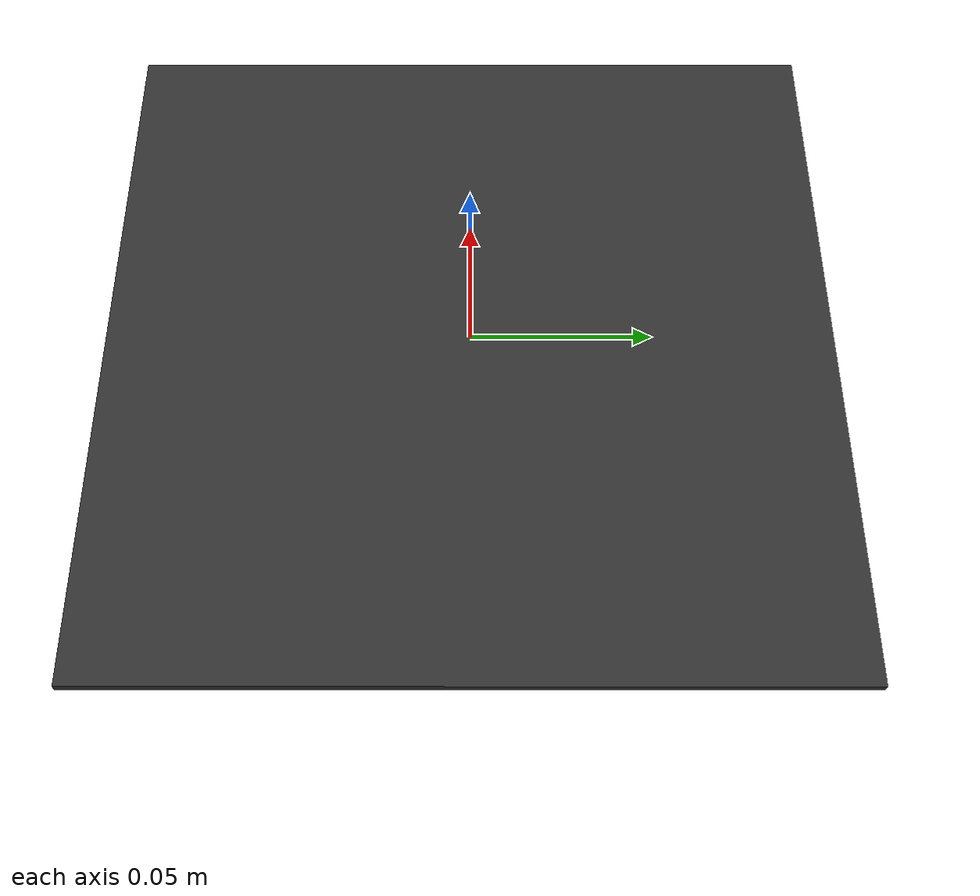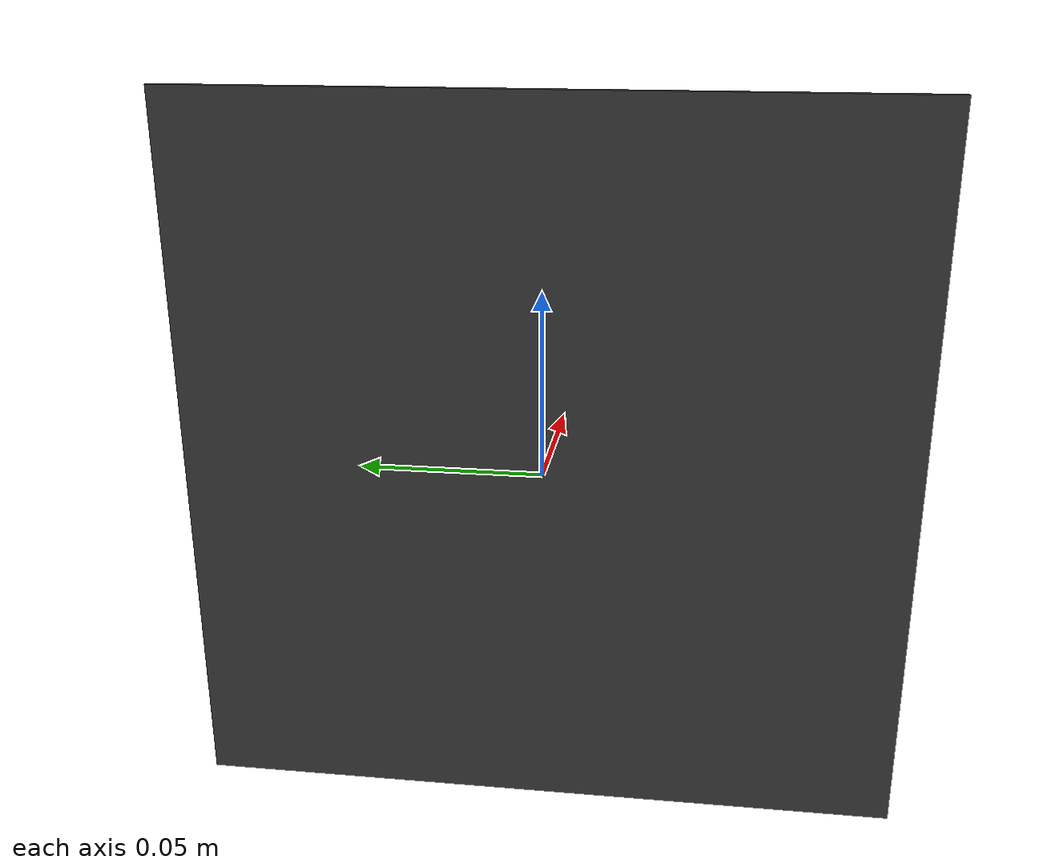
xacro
<?xml version="1.0" ?>
<robot name="Marker" xmlns:xacro="http://www.ros.org/wiki/xacro">

<!-- Dummy Root Link -->
  <link name="base_link"/>

    <joint name="base_link_to_chess" type="fixed">
      <parent link="base_link"/>
      <child link="board"/>
    </joint>

<!-- LINKS -->
    <link name="board">
      <inertial>
        <origin xyz="0 0 0"/>
        <mass value="1.0"/>
        <inertia ixx="0.1"  ixy="0"  ixz="1" iyy="0.1" iyz="0" izz="0.1" />
      </inertial>
      <visual>
        <origin xyz="0 0 0" rpy="1.57 0 -1.57" />
        <geometry>
          <mesh filename="package://bbot_description/meshes/visual/AR_tag.dae"  scale="1 1 .5"/>
        </geometry>
        <material name="FlatBlack ">
          <color rgba="0.20 0.20 0.20 1.0"/>
        </material>
      </visual>
      <collision>
        <origin xyz="0 0 0" rpy="1.57 0 -1.57" />
        <geometry>
          <mesh filename="package://bbot_description/meshes/visual/AR_tag.dae"  scale="1 1 .5"/>
        </geometry>
      </collision>
    </link>

<!-- KINEMATICS -->
    <gazebo reference="board">
      <self_collide>0</self_collide>
      <kinematic>1</kinematic>
      <gravity>0</gravity>
      <static>true</static>
    </gazebo>

</robot>
